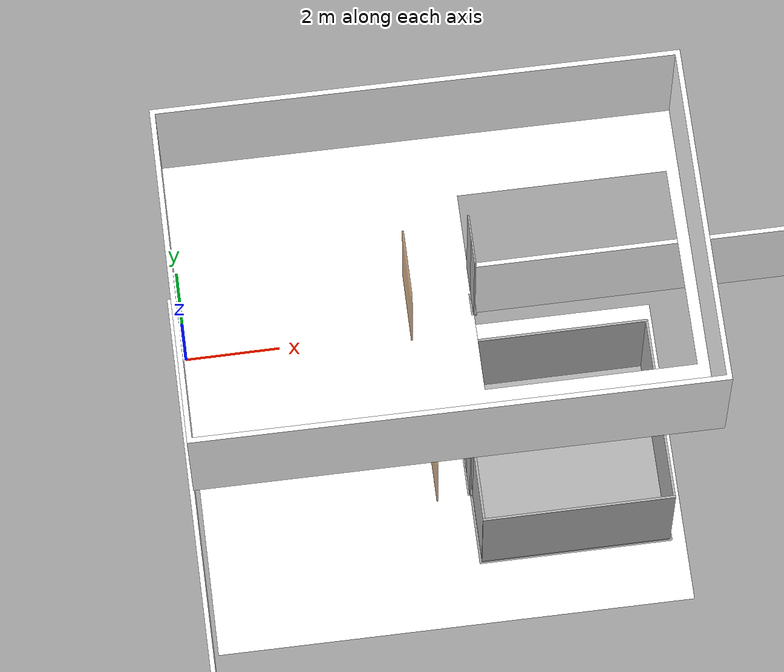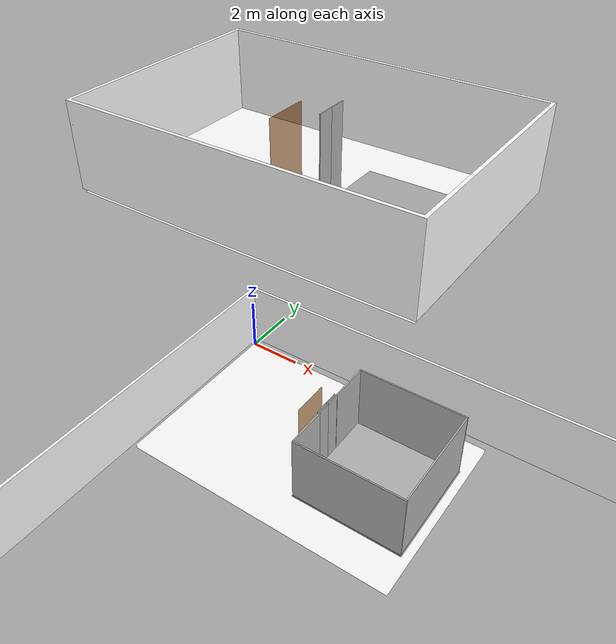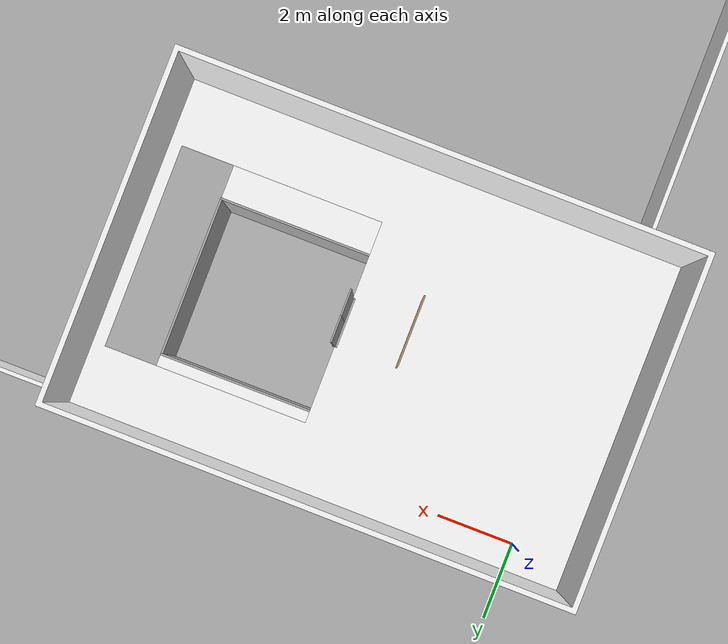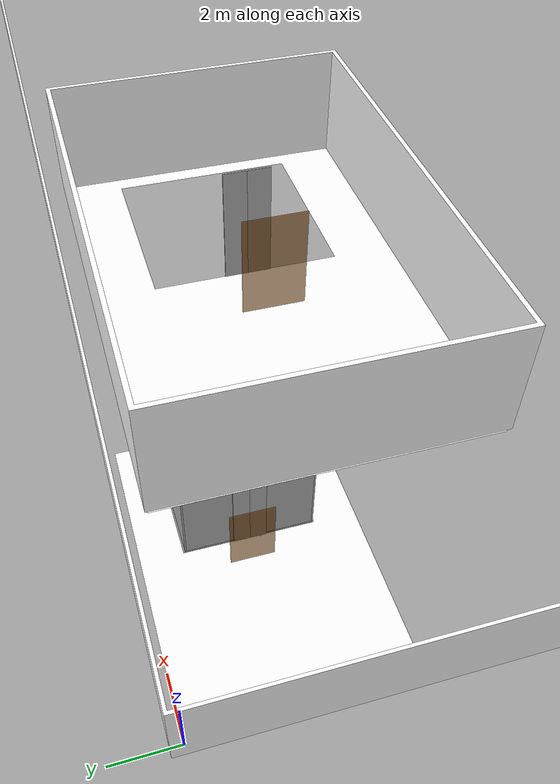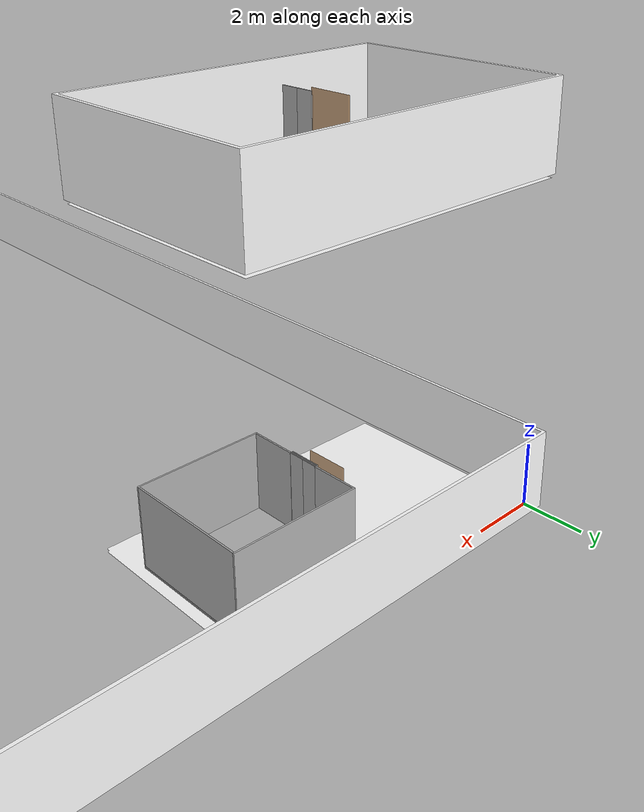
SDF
<sdf version="1.7">
 <world name="sim_world">
  <physics name="10ms" type="ode">
   <max_step_size>0.01</max_step_size>
   <real_time_factor>1.0</real_time_factor>
  </physics>
  <plugin filename="gz-sim-physics-system" name="gz::sim::systems::Physics"/>
  <plugin filename="gz-sim-user-commands-system" name="gz::sim::systems::UserCommands"/>
  <plugin filename="gz-sim-scene-broadcaster-system" name="gz::sim::systems::SceneBroadcaster"/>
  <plugin filename="libdoor.so" name="door"/>
  <plugin filename="liblift.so" name="lift"/>
  <scene><ambient>1 1 1</ambient><background>0.8 0.8 0.8</background><grid>false</grid></scene>
  <light type="directional" name="sun">
   <pose>0 0 10 0 0 0</pose>
   <diffuse>1 1 1 1</diffuse>
   <specular>0.2 0.2 0.2 1</specular>
   <attenuation>
    <range>1000</range>
    <constant>0.09</constant>
    <linear>0.001</linear>
    <quadratic>0.001</quadratic>
   </attenuation>
   <direction>-0.5 0.1 -0.9</direction>
  </light>
  <model name="door1">
   <pose>4.913333333333333 -3.2179 0.0 0 0 1.5707963267948966</pose>
   <link name="right">
    <pose>0 0 1.11 0 0 0</pose>
    <visual name="right_visual">
     <geometry><box><size>1.3394000000000001 0.03 2.2</size></box></geometry>
     <material>
      <ambient>0.5 0.25 0 0.6</ambient>
      <diffuse>0.5 0.25 0 0.6</diffuse>
      <pbr><metal><metalness>0.0</metalness></metal></pbr>
     </material>
    </visual>
    <collision name="right_collision">
     <geometry><box><size>1.3394000000000001 0.03 2.2</size></box></geometry>
     <surface><contact><collide_bitmask>0x02</collide_bitmask></contact></surface>
    </collision>
    <inertial>
     <mass>50.0</mass>
     <inertia><ixx>20.17041666666667</ixx><iyy>27.641634833333338</iyy><izz>7.478718166666668</izz></inertia>
    </inertial>
   </link>
   <joint name="right_joint" type="prismatic">
    <parent>world</parent>
    <child>right</child>
    <axis>
     <xyz>1 0 0</xyz>
     <limit><lower>0.0</lower><upper>1.3494000000000002</upper><effort>500.0</effort></limit>
    </axis>
   </joint>
   <plugin name="register_component" filename="libregister_component.so">
    <component name="Door">
     <v_max_door>0.2</v_max_door>
     <a_max_door>0.2</a_max_door>
     <a_nom_door>0.08</a_nom_door>
     <dx_min_door>0.001</dx_min_door>
     <f_max_door>100.0</f_max_door>
     <ros_interface>true</ros_interface>
     <door name="door1" type="SlidingDoor" left_joint_name="empty_joint" right_joint_name="right_joint"/>
    </component>
   </plugin>
  </model>
  <include><name>test1_L1</name><uri>model://test1_L1</uri></include>
  <model name="door2">
   <pose>4.372023077460687 -3.5420383040186367 10.0 0 0 1.5673833707633582</pose>
   <link name="right">
    <pose>0 0 1.11 0 0 0</pose>
    <visual name="right_visual">
     <geometry><box><size>1.3365723621216272 0.03 2.2</size></box></geometry>
     <material>
      <ambient>0.5 0.25 0 0.6</ambient>
      <diffuse>0.5 0.25 0 0.6</diffuse>
      <pbr><metal><metalness>0.0</metalness></metal></pbr>
     </material>
    </visual>
    <collision name="right_collision">
     <geometry><box><size>1.3365723621216272 0.03 2.2</size></box></geometry>
     <surface><contact><collide_bitmask>0x02</collide_bitmask></contact></surface>
    </collision>
    <inertial>
     <mass>50.0</mass>
     <inertia><ixx>20.17041666666667</ixx><iyy>27.610106996614114</iyy><izz>7.447190329947443</izz></inertia>
    </inertial>
   </link>
   <joint name="right_joint" type="prismatic">
    <parent>world</parent>
    <child>right</child>
    <axis>
     <xyz>1 0 0</xyz>
     <limit><lower>0.0</lower><upper>1.3465723621216272</upper><effort>500.0</effort></limit>
    </axis>
   </joint>
   <plugin name="register_component" filename="libregister_component.so">
    <component name="Door">
     <v_max_door>0.2</v_max_door>
     <a_max_door>0.2</a_max_door>
     <a_nom_door>0.08</a_nom_door>
     <dx_min_door>0.001</dx_min_door>
     <f_max_door>100.0</f_max_door>
     <ros_interface>true</ros_interface>
     <door name="door2" type="SlidingDoor" left_joint_name="empty_joint" right_joint_name="right_joint"/>
    </component>
   </plugin>
  </model>
  <include><name>test1_L2</name><uri>model://test1_L2</uri><pose>0 0 10.0 0 0 0</pose></include>
  <model name="ShaftDoor_lift1_L1_name">
   <pose>5.616666666666667 -3.3333333333333335 0.0 0 0 1.57</pose>
   <link name="right_door">
    <pose>0.25 0 1.25 0 0 0</pose>
    <visual name="right_door_visual">
     <geometry><box><size>0.5 0.03 2.5</size></box></geometry>
     <material>
      <ambient>0.5 0.5 0.5 1</ambient>
      <diffuse>0.7 0.7 0.7 1</diffuse>
      <specular>0.6 0.6 0.6 1</specular>
      <emissive>0.1 0.1 0.1 1</emissive>
     </material>
    </visual>
    <collision name="right_door_collision">
     <geometry><box><size>0.5 0.03 2.5</size></box></geometry>
     <surface><contact><collide_bitmask>0x02</collide_bitmask></contact></surface>
    </collision>
   </link>
   <link name="left_door">
    <pose>-0.25 0 1.25 0 0 0</pose>
    <visual name="left_door_visual">
     <geometry><box><size>0.5 0.03 2.5</size></box></geometry>
     <material>
      <ambient>0.5 0.5 0.5 1</ambient>
      <diffuse>0.7 0.7 0.7 1</diffuse>
      <specular>0.6 0.6 0.6 1</specular>
      <emissive>0.1 0.1 0.1 1</emissive>
     </material>
    </visual>
    <collision name="left_door_collision">
     <geometry><box><size>0.5 0.03 2.5</size></box></geometry>
     <surface><contact><collide_bitmask>0x02</collide_bitmask></contact></surface>
    </collision>
   </link>
   <joint name="right_joint" type="prismatic">
    <parent>world</parent>
    <child>right_door</child>
    <axis><xyz>1 0 0</xyz><limit><lower>0</lower><upper>0.5</upper></limit></axis>
   </joint>
   <joint name="left_joint" type="prismatic">
    <parent>world</parent>
    <child>left_door</child>
    <axis><xyz>1 0 0</xyz><limit><lower>-0.5</lower><upper>0</upper></limit></axis>
   </joint>
   <link name="ramp">
    <pose>0 0 -0.025 0 0 0</pose>
    <visual name="ramp_visual">
     <geometry><box><size>1.0 0.1 0.05</size></box></geometry>
     <material>
      <ambient>0.5 0.5 0.5 1</ambient>
      <diffuse>0.7 0.7 0.7 1</diffuse>
      <specular>0.6 0.6 0.6 1</specular>
      <emissive>0.1 0.1 0.1 1</emissive>
     </material>
    </visual>
    <collision name="ramp_collision">
     <geometry><box><size>1.0 0.1 0.05</size></box></geometry>
     <surface><contact><collide_bitmask>0x02</collide_bitmask></contact></surface>
    </collision>
   </link>
   <joint name="ramp_joint" type="fixed"><parent>world</parent><child>ramp</child></joint>
   <plugin name="register_component" filename="libregister_component.so">
    <component name="Door">
     <v_max_door>0.3</v_max_door>
     <a_max_door>0.2</a_max_door>
     <a_nom_door>0.1</a_nom_door>
     <dx_min_door>0.0001</dx_min_door>
     <f_max_door>35.0</f_max_door>
     <door left_joint_name="left_joint" name="ShaftDoor_lift1_L1_name" right_joint_name="right_joint" type="DoubleSlidingDoor"/>
    </component>
   </plugin>
  </model>
  <model name="ShaftDoor_lift1_L2_name">
   <pose>5.616666666666667 -3.3333333333333335 10.0 0 0 1.57</pose>
   <link name="right_door">
    <pose>0.25 0 1.25 0 0 0</pose>
    <visual name="right_door_visual">
     <geometry><box><size>0.5 0.03 2.5</size></box></geometry>
     <material>
      <ambient>0.5 0.5 0.5 1</ambient>
      <diffuse>0.7 0.7 0.7 1</diffuse>
      <specular>0.6 0.6 0.6 1</specular>
      <emissive>0.1 0.1 0.1 1</emissive>
     </material>
    </visual>
    <collision name="right_door_collision">
     <geometry><box><size>0.5 0.03 2.5</size></box></geometry>
     <surface><contact><collide_bitmask>0x02</collide_bitmask></contact></surface>
    </collision>
   </link>
   <link name="left_door">
    <pose>-0.25 0 1.25 0 0 0</pose>
    <visual name="left_door_visual">
     <geometry><box><size>0.5 0.03 2.5</size></box></geometry>
     <material>
      <ambient>0.5 0.5 0.5 1</ambient>
      <diffuse>0.7 0.7 0.7 1</diffuse>
      <specular>0.6 0.6 0.6 1</specular>
      <emissive>0.1 0.1 0.1 1</emissive>
     </material>
    </visual>
    <collision name="left_door_collision">
     <geometry><box><size>0.5 0.03 2.5</size></box></geometry>
     <surface><contact><collide_bitmask>0x02</collide_bitmask></contact></surface>
    </collision>
   </link>
   <joint name="right_joint" type="prismatic">
    <parent>world</parent>
    <child>right_door</child>
    <axis><xyz>1 0 0</xyz><limit><lower>0</lower><upper>0.5</upper></limit></axis>
   </joint>
   <joint name="left_joint" type="prismatic">
    <parent>world</parent>
    <child>left_door</child>
    <axis><xyz>1 0 0</xyz><limit><lower>-0.5</lower><upper>0</upper></limit></axis>
   </joint>
   <link name="ramp">
    <pose>0 0 -0.025 0 0 0</pose>
    <visual name="ramp_visual">
     <geometry><box><size>1.0 0.1 0.05</size></box></geometry>
     <material>
      <ambient>0.5 0.5 0.5 1</ambient>
      <diffuse>0.7 0.7 0.7 1</diffuse>
      <specular>0.6 0.6 0.6 1</specular>
      <emissive>0.1 0.1 0.1 1</emissive>
     </material>
    </visual>
    <collision name="ramp_collision">
     <geometry><box><size>1.0 0.1 0.05</size></box></geometry>
     <surface><contact><collide_bitmask>0x02</collide_bitmask></contact></surface>
    </collision>
   </link>
   <joint name="ramp_joint" type="fixed"><parent>world</parent><child>ramp</child></joint>
   <plugin name="register_component" filename="libregister_component.so">
    <component name="Door">
     <v_max_door>0.3</v_max_door>
     <a_max_door>0.2</a_max_door>
     <a_nom_door>0.1</a_nom_door>
     <dx_min_door>0.0001</dx_min_door>
     <f_max_door>35.0</f_max_door>
     <door left_joint_name="left_joint" name="ShaftDoor_lift1_L2_name" right_joint_name="right_joint" type="DoubleSlidingDoor"/>
    </component>
   </plugin>
  </model>
  <model name="lift1">
   <link name="platform">
    <inertial>
     <mass>1200</mass>
     <inertia><ixx>1600.2500000000002</ixx><iyy>1600.2500000000002</iyy><izz>3200.0</izz></inertia>
    </inertial>
    <visual name="floor_visual">
     <pose>0 0 -0.025 0 0 0</pose>
     <geometry><box><size>4.0 4.0 0.05</size></box></geometry>
     <material>
      <ambient>0.5 0.5 0.5 1</ambient>
      <diffuse>0.7 0.7 0.7 1</diffuse>
      <specular>0.6 0.6 0.6 1</specular>
      <emissive>0.1 0.1 0.1 1</emissive>
     </material>
    </visual>
    <collision name="floor_collision">
     <pose>0 0 -0.025 0 0 0</pose>
     <geometry><box><size>4.0 4.0 0.05</size></box></geometry>
     <surface><contact><collide_bitmask>0x01</collide_bitmask></contact></surface>
    </collision>
    <visual name="frontwall1_visual">
     <pose>0.0 1.975 1.25 0 0 0</pose>
     <geometry><box><size>4.0 0.05 2.5</size></box></geometry>
     <material>
      <ambient>0.5 0.5 0.5 1</ambient>
      <diffuse>0.7 0.7 0.7 1</diffuse>
      <specular>0.6 0.6 0.6 1</specular>
      <emissive>0.1 0.1 0.1 1</emissive>
     </material>
    </visual>
    <collision name="frontwall1_collision">
     <pose>0.0 1.975 1.25 0 0 0</pose>
     <geometry><box><size>4.0 0.05 2.5</size></box></geometry>
     <surface><contact><collide_bitmask>0x01</collide_bitmask></contact></surface>
    </collision>
    <visual name="backwall1_visual">
     <pose>0.0 -1.975 1.25 0 0 0</pose>
     <geometry><box><size>4.0 0.05 2.5</size></box></geometry>
     <material>
      <ambient>0.5 0.5 0.5 1</ambient>
      <diffuse>0.7 0.7 0.7 1</diffuse>
      <specular>0.6 0.6 0.6 1</specular>
      <emissive>0.1 0.1 0.1 1</emissive>
     </material>
    </visual>
    <collision name="backwall1_collision">
     <pose>0.0 -1.975 1.25 0 0 0</pose>
     <geometry><box><size>4.0 0.05 2.5</size></box></geometry>
     <surface><contact><collide_bitmask>0x01</collide_bitmask></contact></surface>
    </collision>
    <visual name="leftwall1_visual">
     <pose>-1.975 -1.225 1.25 0 0 1.5707963267948966</pose>
     <geometry><box><size>1.45 0.05 2.5</size></box></geometry>
     <material>
      <ambient>0.5 0.5 0.5 1</ambient>
      <diffuse>0.7 0.7 0.7 1</diffuse>
      <specular>0.6 0.6 0.6 1</specular>
      <emissive>0.1 0.1 0.1 1</emissive>
     </material>
    </visual>
    <collision name="leftwall1_collision">
     <pose>-1.975 -1.225 1.25 0 0 1.5707963267948966</pose>
     <geometry><box><size>1.45 0.05 2.5</size></box></geometry>
     <surface><contact><collide_bitmask>0x01</collide_bitmask></contact></surface>
    </collision>
    <visual name="leftwall2_visual">
     <pose>-1.975 1.225 1.25 0 0 1.5707963267948966</pose>
     <geometry><box><size>1.45 0.05 2.5</size></box></geometry>
     <material>
      <ambient>0.5 0.5 0.5 1</ambient>
      <diffuse>0.7 0.7 0.7 1</diffuse>
      <specular>0.6 0.6 0.6 1</specular>
      <emissive>0.1 0.1 0.1 1</emissive>
     </material>
    </visual>
    <collision name="leftwall2_collision">
     <pose>-1.975 1.225 1.25 0 0 1.5707963267948966</pose>
     <geometry><box><size>1.45 0.05 2.5</size></box></geometry>
     <surface><contact><collide_bitmask>0x01</collide_bitmask></contact></surface>
    </collision>
    <visual name="rightwall1_visual">
     <pose>1.975 0.0 1.25 0 0 1.5707963267948966</pose>
     <geometry><box><size>3.9 0.05 2.5</size></box></geometry>
     <material>
      <ambient>0.5 0.5 0.5 1</ambient>
      <diffuse>0.7 0.7 0.7 1</diffuse>
      <specular>0.6 0.6 0.6 1</specular>
      <emissive>0.1 0.1 0.1 1</emissive>
     </material>
    </visual>
    <collision name="rightwall1_collision">
     <pose>1.975 0.0 1.25 0 0 1.5707963267948966</pose>
     <geometry><box><size>3.9 0.05 2.5</size></box></geometry>
     <surface><contact><collide_bitmask>0x01</collide_bitmask></contact></surface>
    </collision>
   </link>
   <joint name="cabin_joint" type="prismatic">
    <parent>world</parent>
    <child>platform</child>
    <axis><xyz>0 0 1</xyz></axis>
   </joint>
   <model name="CabinDoor_lift1_name">
    <pose>-1.975 0.0 0 0 0 1.57</pose>
    <link name="right_door">
     <pose>0.25 0 1.25 0 0 0</pose>
     <visual name="right_door_visual">
      <geometry><box><size>0.5 0.03 2.5</size></box></geometry>
      <material>
       <ambient>0.5 0.5 0.5 1</ambient>
       <diffuse>0.7 0.7 0.7 1</diffuse>
       <specular>0.6 0.6 0.6 1</specular>
       <emissive>0.1 0.1 0.1 1</emissive>
      </material>
     </visual>
     <collision name="right_door_collision">
      <geometry><box><size>0.5 0.03 2.5</size></box></geometry>
      <surface><contact><collide_bitmask>0x02</collide_bitmask></contact></surface>
     </collision>
    </link>
    <link name="left_door">
     <pose>-0.25 0 1.25 0 0 0</pose>
     <visual name="left_door_visual">
      <geometry><box><size>0.5 0.03 2.5</size></box></geometry>
      <material>
       <ambient>0.5 0.5 0.5 1</ambient>
       <diffuse>0.7 0.7 0.7 1</diffuse>
       <specular>0.6 0.6 0.6 1</specular>
       <emissive>0.1 0.1 0.1 1</emissive>
      </material>
     </visual>
     <collision name="left_door_collision">
      <geometry><box><size>0.5 0.03 2.5</size></box></geometry>
      <surface><contact><collide_bitmask>0x02</collide_bitmask></contact></surface>
     </collision>
    </link>
    <plugin name="register_component" filename="libregister_component.so">
     <component name="Door">
      <v_max_door>0.3</v_max_door>
      <a_max_door>0.2</a_max_door>
      <a_nom_door>0.1</a_nom_door>
      <dx_min_door>0.0001</dx_min_door>
      <f_max_door>35.0</f_max_door>
      <door left_joint_name="CabinDoor_lift1_name_left_joint" name="CabinDoor_lift1_name" right_joint_name="CabinDoor_lift1_name_right_joint" type="DoubleSlidingDoor"/>
     </component>
    </plugin>
   </model>
   <joint name="CabinDoor_lift1_name_right_joint" type="prismatic">
    <parent>platform</parent>
    <child>CabinDoor_lift1_name::right_door</child>
    <axis><xyz>1 0 0</xyz><limit><lower>0</lower><upper>0.5</upper></limit></axis>
   </joint>
   <joint name="CabinDoor_lift1_name_left_joint" type="prismatic">
    <parent>platform</parent>
    <child>CabinDoor_lift1_name::left_door</child>
    <axis><xyz>1 0 0</xyz><limit><lower>-0.5</lower><upper>0</upper></limit></axis>
   </joint>
   <plugin name="register_component" filename="libregister_component.so">
    <component name="Lift">
     <lift_name>lift1</lift_name>
     <floor name="L1" elevation="0.0">
      <door_pair cabin_door="CabinDoor_lift1_name" shaft_door="ShaftDoor_lift1_L1_name"/>
     </floor>
     <floor name="L2" elevation="10.0">
      <door_pair cabin_door="CabinDoor_lift1_name" shaft_door="ShaftDoor_lift1_L2_name"/>
     </floor>
     <initial_floor>L1</initial_floor>
     <v_max_cabin>2.0</v_max_cabin>
     <a_max_cabin>1.2</a_max_cabin>
     <a_nom_cabin>1.0</a_nom_cabin>
     <dx_min_cabin>0.001</dx_min_cabin>
     <f_max_cabin>25323.0</f_max_cabin>
     <cabin_joint_name>cabin_joint</cabin_joint_name>
    </component>
   </plugin>
   <pose>7.666666666666667 -3.3333333333333335 0 0 0 0.0</pose>
  </model>
  <plugin name="register_component" filename="libregister_component.so">
   <component name="Chargers">
    <rmf_charger name="tinyRobot1" x="1.5703333333333334" y="-3.2615333333333334" z="0.0"/>
   </component>
  </plugin>
 </world>
</sdf>

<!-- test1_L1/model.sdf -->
<sdf version="1.7">
  <model name="test1_L1">
    <static>true</static>
    <link name="floor_1">
      <visual name="visual">
        <geometry>
          <mesh>
            <uri>model://test1_L1/meshes/floor_1.obj</uri>
          </mesh>
        </geometry>
        <material>
          <diffuse>1.0 1.0 1.0</diffuse>
          <specular>0.1 0.1 0.1</specular>
          <pbr>
            <metal>
              <metalness>0.0</metalness>
              <albedo_map>model://test1_L1/meshes/blue_linoleum.png</albedo_map>
            </metal>
          </pbr>
          <script>
            <uri>model://test1_L1/meshes/</uri>
            <name>floor_1_Diffuse</name>
          </script>
        </material>
      </visual>
      <collision name="collision">
        <geometry>
          <mesh>
            <uri>model://test1_L1/meshes/floor_1.obj</uri>
          </mesh>
        </geometry>
        <surface>
          <contact>
            <collide_bitmask>0x01</collide_bitmask>
          </contact>
        </surface>
      </collision>
    </link>
    <link name="wall_1">
      <visual name="wall_1">
        <geometry>
          <mesh>
            <uri>model://test1_L1/meshes/wall_1.obj</uri>
          </mesh>
        </geometry>
        <transparency>0.0</transparency>
        <material>
          <diffuse>1.0 1.0 1.0</diffuse>
          <specular>0.1 0.1 0.1</specular>
          <pbr>
            <metal>
              <metalness>0.0</metalness>
              <albedo_map>model://test1_L1/meshes/default.png</albedo_map>
            </metal>
          </pbr>
          <script>
            <uri>model://test1_L1/meshes/</uri>
            <name>wall_1_Diffuse</name>
          </script>
        </material>
      </visual>
      <collision name="collision">
        <geometry>
          <mesh>
            <uri>model://test1_L1/meshes/wall_1.obj</uri>
          </mesh>
        </geometry>
        <surface>
          <contact>
            <collide_bitmask>0x01</collide_bitmask>
          </contact>
        </surface>
      </collision>
      <pose>-0.24200000000000443 -82.286 0 0 0 0</pose>
    </link>
  </model>
</sdf>

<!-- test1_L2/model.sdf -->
<sdf version="1.7">
  <model name="test1_L2">
    <static>true</static>
    <link name="floor_1">
      <visual name="visual">
        <geometry>
          <mesh>
            <uri>model://test1_L2/meshes/floor_1.obj</uri>
          </mesh>
        </geometry>
        <material>
          <diffuse>1.0 1.0 1.0</diffuse>
          <specular>0.1 0.1 0.1</specular>
          <pbr>
            <metal>
              <metalness>0.0</metalness>
              <albedo_map>model://test1_L2/meshes/blue_linoleum.png</albedo_map>
            </metal>
          </pbr>
          <script>
            <uri>model://test1_L2/meshes/</uri>
            <name>floor_1_Diffuse</name>
          </script>
        </material>
      </visual>
      <collision name="collision">
        <geometry>
          <mesh>
            <uri>model://test1_L2/meshes/floor_1.obj</uri>
          </mesh>
        </geometry>
        <surface>
          <contact>
            <collide_bitmask>0x01</collide_bitmask>
          </contact>
        </surface>
      </collision>
    </link>
    <link name="wall_1">
      <visual name="wall_1">
        <geometry>
          <mesh>
            <uri>model://test1_L2/meshes/wall_1.obj</uri>
          </mesh>
        </geometry>
        <transparency>0.0</transparency>
        <material>
          <diffuse>1.0 1.0 1.0</diffuse>
          <specular>0.1 0.1 0.1</specular>
          <pbr>
            <metal>
              <metalness>0.0</metalness>
              <albedo_map>model://test1_L2/meshes/default.png</albedo_map>
            </metal>
          </pbr>
          <script>
            <uri>model://test1_L2/meshes/</uri>
            <name>wall_1_Diffuse</name>
          </script>
        </material>
      </visual>
      <collision name="collision">
        <geometry>
          <mesh>
            <uri>model://test1_L2/meshes/wall_1.obj</uri>
          </mesh>
        </geometry>
        <surface>
          <contact>
            <collide_bitmask>0x01</collide_bitmask>
          </contact>
        </surface>
      </collision>
      <pose>-0.10633110175015936 -6.739514561272582 0 0 0 0</pose>
    </link>
  </model>
</sdf>
